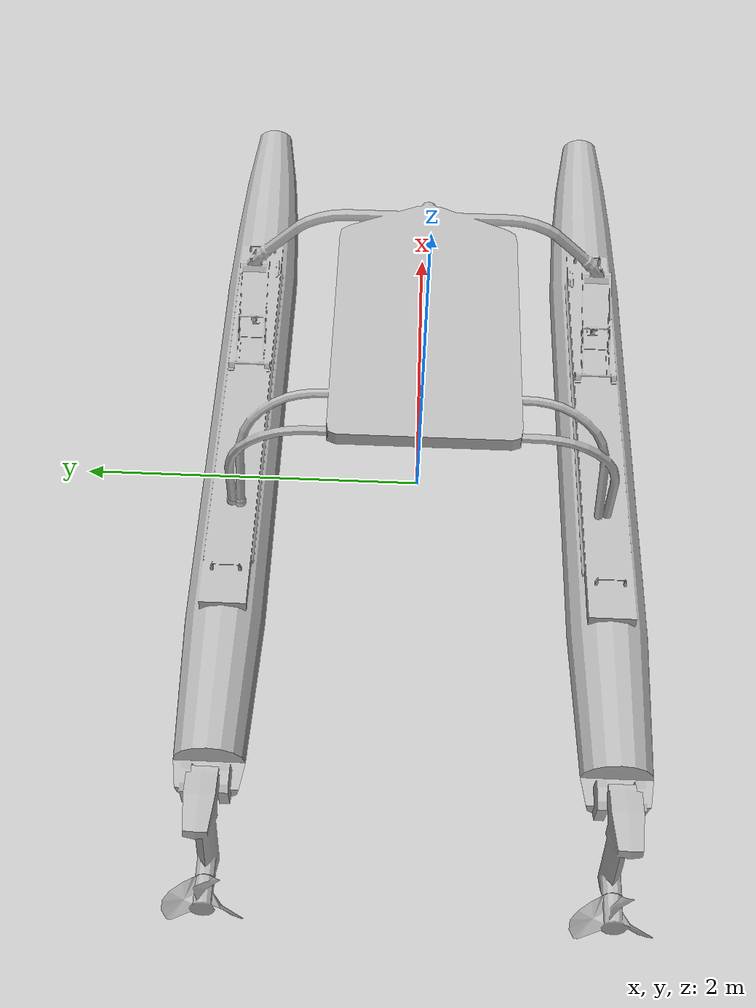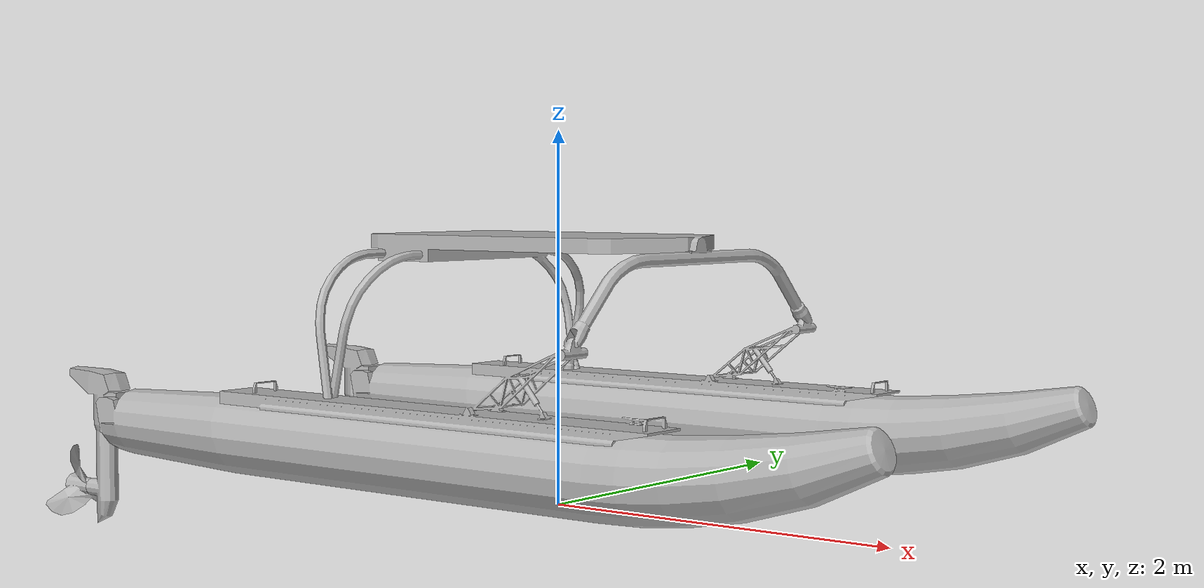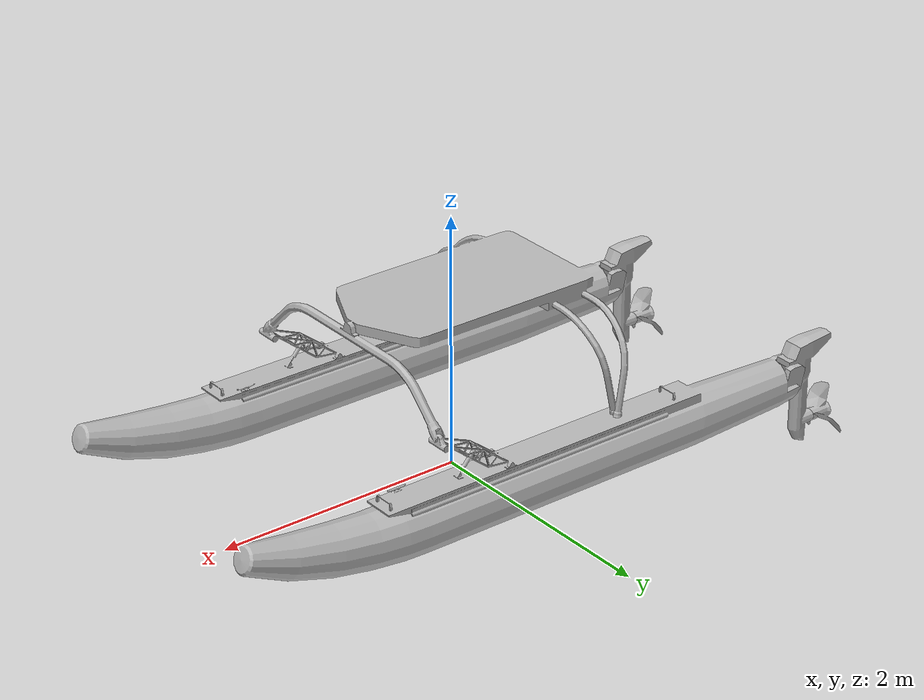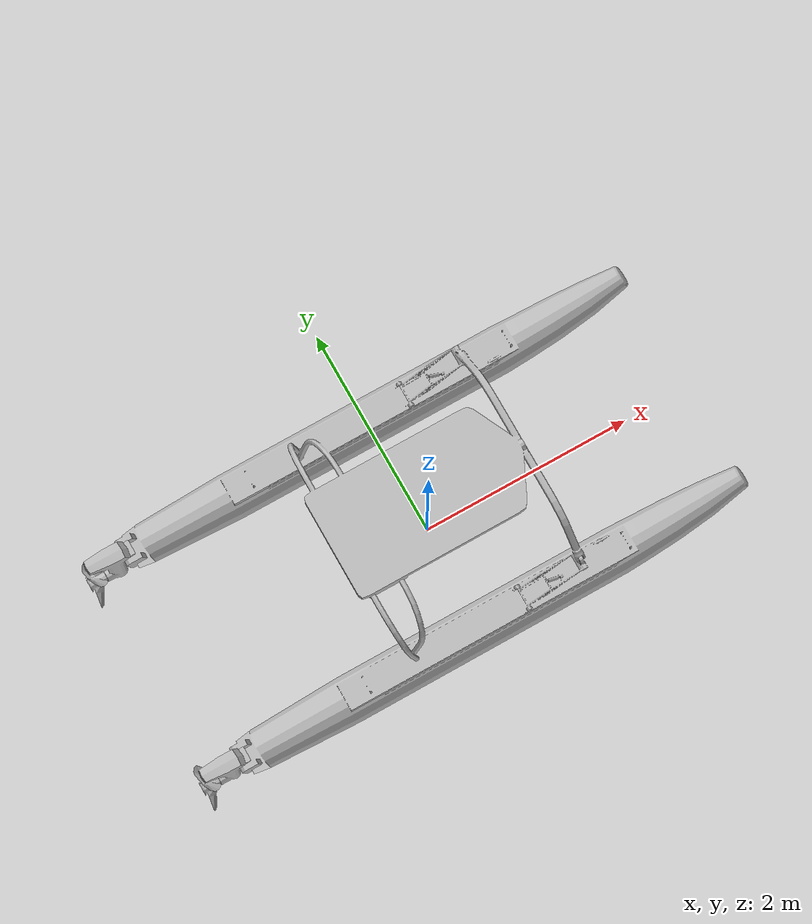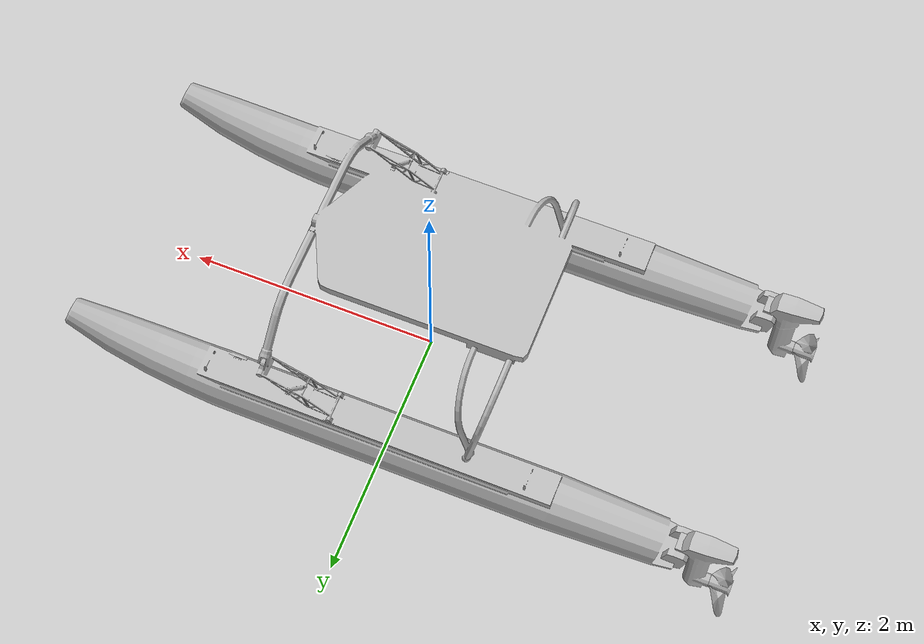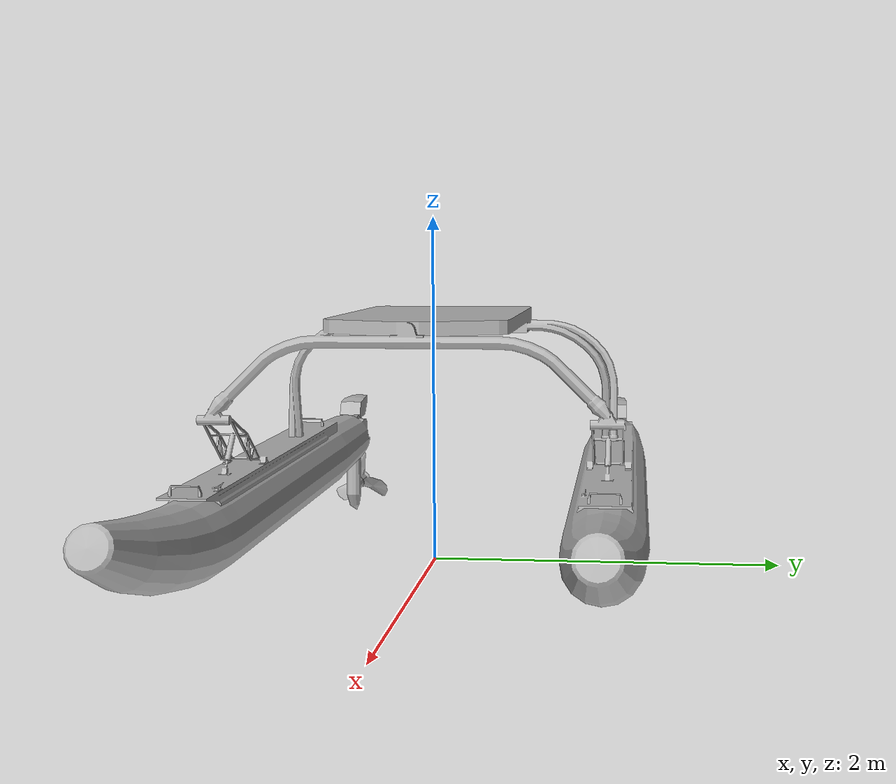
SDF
<?xml version="1.0"?>
<sdf version="1.9">
  <model name="wamv">
    <pose>0 0 0.15 0 0 0</pose>

    <!-- HULL / BODY -->
    <link name="base_link">
      <self_collide>false</self_collide>

      <!-- Hull mass that worked for floating -->
      <inertial>
        <mass>36.0</mass>
        <pose>0.298 0 -0.12 0 0 0</pose>  <!-- FORWARD, not back -->
        <inertia>
          <ixx>22.0</ixx><ixy>0.0</ixy><ixz>0.0</ixz>
          <iyy>45.0</iyy><iyz>0</iyz>
          <izz>55.0</izz>
        </inertia>
      </inertial>

      <!-- Moderate damping to help stability -->
      <velocity_decay>
        <linear>0.08</linear>
        <angular>0.20</angular>
      </velocity_decay>

      <!-- Visual -->
      <visual name="base_visual">
        <geometry>
          <mesh><uri>model://wamv/meshes/WAM-V-Base.dae</uri></mesh>
        </geometry>
      </visual>

      <!-- LEFT PONTOON - centered -->
      <collision name="pontoon_left">
        <pose>-0.85 0.80 -0.10 0 1.5708 0</pose>   <!-- x moved back; z slightly deeper -->
        <geometry>
          <cylinder>
            <radius>0.12</radius>
            <length>3.2</length>                   <!-- spans from about -2.45 to +0.75 m -->
          </cylinder>
        </geometry>
        <surface>
          <contact>
            <collide_bitmask>0x01</collide_bitmask>
          </contact>
        </surface>
      </collision>

      <!-- RIGHT PONTOON -->
      <collision name="pontoon_right">
        <pose>-0.85 -0.80 -0.10 0 1.5708 0</pose>
        <geometry>
          <cylinder>
            <radius>0.12</radius>
            <length>3.2</length>
          </cylinder>
        </geometry>
        <surface>
          <contact>
            <collide_bitmask>0x01</collide_bitmask>
          </contact>
        </surface>
      </collision>

      <!-- Deck collision - above water -->
      <collision name="deck_collision">
        <pose>0 0 0.35 0 0 0</pose>
        <geometry><box><size>2.5 1.5 0.02</size></box></geometry>
      </collision>

      <!-- SENSORS -->
      <sensor name="imu_sensor" type="imu">
        <always_on>1</always_on>
        <update_rate>250</update_rate>
        <imu>
          <angular_velocity>
            <x><noise type="gaussian"><mean>0</mean><stddev>0.00018665</stddev>
              <dynamic_bias_stddev>3.8785e-05</dynamic_bias_stddev>
              <dynamic_bias_correlation_time>1000</dynamic_bias_correlation_time></noise></x>
            <y><noise type="gaussian"><mean>0</mean><stddev>0.00018665</stddev>
              <dynamic_bias_stddev>3.8785e-05</dynamic_bias_stddev>
              <dynamic_bias_correlation_time>1000</dynamic_bias_correlation_time></noise></y>
            <z><noise type="gaussian"><mean>0</mean><stddev>0.00018665</stddev>
              <dynamic_bias_stddev>3.8785e-05</dynamic_bias_stddev>
              <dynamic_bias_correlation_time>1000</dynamic_bias_correlation_time></noise></z>
          </angular_velocity>
          <linear_acceleration>
            <x><noise type="gaussian"><mean>0</mean><stddev>0.00186</stddev>
              <dynamic_bias_stddev>0.006</dynamic_bias_stddev>
              <dynamic_bias_correlation_time>300</dynamic_bias_correlation_time></noise></x>
            <y><noise type="gaussian"><mean>0</mean><stddev>0.00186</stddev>
              <dynamic_bias_stddev>0.006</dynamic_bias_stddev>
              <dynamic_bias_correlation_time>300</dynamic_bias_correlation_time></noise></y>
            <z><noise type="gaussian"><mean>0</mean><stddev>0.00186</stddev>
              <dynamic_bias_stddev>0.006</dynamic_bias_stddev>
              <dynamic_bias_correlation_time>300</dynamic_bias_correlation_time></noise></z>
          </linear_acceleration>
        </imu>
      </sensor>

      <sensor name="magnetometer_sensor" type="magnetometer">
        <always_on>1</always_on><update_rate>100</update_rate>
        <magnetometer>
          <x><noise type="gaussian"><mean>0</mean><stddev>0.0001</stddev></noise></x>
          <y><noise type="gaussian"><mean>0</mean><stddev>0.0001</stddev></noise></y>
          <z><noise type="gaussian"><mean>0</mean><stddev>0.0001</stddev></noise></z>
        </magnetometer>
      </sensor>

      <sensor name="air_pressure_sensor" type="air_pressure">
        <always_on>1</always_on><update_rate>50</update_rate>
        <air_pressure>
          <pressure><noise type="gaussian"><mean>0</mean><stddev>0.01</stddev></noise></pressure>
        </air_pressure>
      </sensor>

      <sensor name="navsat_sensor" type="navsat">
        <always_on>1</always_on><update_rate>30</update_rate>
      </sensor>
    </link>

    <!-- LEFT ENGINE - Original VRX position (stern) -->
    <link name="left_engine_link">
      <pose relative_to="base_link">-2.373776 1.027135 0.318237 0 0 0</pose>
      <inertial>
        <mass>1.5</mass>
        <inertia>
          <ixx>0.1</ixx><ixy>0</ixy><ixz>0</ixz>
          <iyy>0.12</iyy><iyz>0</iyz>
          <izz>0.08</izz>
        </inertia>
      </inertial>
      <visual name="left_engine_visual">
        <geometry><mesh><uri>model://wamv/meshes/engine.dae</uri></mesh></geometry>
      </visual>
    </link>

    <!-- LEFT PROPELLER - Original VRX offset -->
    <link name="left_propeller_link">
      <pose relative_to="left_engine_link">-0.278156 0 -0.509371 0 0 0</pose>
      <inertial>
        <mass>0.5</mass>
        <inertia>
          <ixx>0.002</ixx><ixy>0</ixy><ixz>0</ixz>
          <iyy>0.002</iyy><iyz>0</iyz><izz>0.003</izz>
        </inertia>
      </inertial>
      <visual name="left_propeller_visual">
        <geometry><mesh><uri>model://wamv/meshes/propeller.dae</uri></mesh></geometry>
      </visual>
    </link>

    <!-- RIGHT ENGINE - Original VRX position (stern) -->
    <link name="right_engine_link">
      <pose relative_to="base_link">-2.373776 -1.027135 0.318237 0 0 0</pose>
      <inertial>
        <mass>1.5</mass>
        <inertia>
          <ixx>0.1</ixx><ixy>0</ixy><ixz>0</ixz>
          <iyy>0.12</iyy><iyz>0</iyz>
          <izz>0.08</izz>
        </inertia>
      </inertial>
      <visual name="right_engine_visual">
        <geometry><mesh><uri>model://wamv/meshes/engine.dae</uri></mesh></geometry>
      </visual>
    </link>

    <!-- RIGHT PROPELLER - Original VRX offset -->
    <link name="right_propeller_link">
      <pose relative_to="right_engine_link">-0.278156 0 -0.509371 0 0 0</pose>
      <inertial>
        <mass>0.5</mass>
        <inertia>
          <ixx>0.002</ixx><ixy>0</ixy><ixz>0</ixz>
          <iyy>0.002</iyy><iyz>0</iyz><izz>0.003</izz>
        </inertia>
      </inertial>
      <visual name="right_propeller_visual">
        <geometry><mesh><uri>model://wamv/meshes/propeller.dae</uri></mesh></geometry>
      </visual>
    </link>

    <!-- JOINTS -->
    <!-- Lock engine pods (no steering for now) -->
    <joint name="left_engine_joint" type="fixed">
      <parent>base_link</parent>
      <child>left_engine_link</child>
    </joint>

    <joint name="right_engine_joint" type="fixed">
      <parent>base_link</parent>
      <child>right_engine_link</child>
    </joint>

    <!-- Propeller joints - spin forward (+X thrust pushes boat forward) -->
    <joint name="left_propeller_joint" type="revolute">
      <parent>left_engine_link</parent>
      <child>left_propeller_link</child>
      <axis>
        <xyz>1 0 0</xyz>
        <limit><lower>-1e16</lower><upper>1e16</upper></limit>
        <dynamics><damping>0.05</damping><friction>0.0</friction></dynamics>
      </axis>
    </joint>

    <joint name="right_propeller_joint" type="revolute">
      <parent>right_engine_link</parent>
      <child>right_propeller_link</child>
      <axis>
        <xyz>1 0 0</xyz>
        <limit><lower>-1e16</lower><upper>1e16</upper></limit>
        <dynamics><damping>0.05</damping><friction>0.0</friction></dynamics>
      </axis>
    </joint>

    <!-- SENSOR PLUGINS -->
    <plugin filename="gz-sim-imu-system" name="gz::sim::systems::Imu"/>
    <plugin filename="gz-sim-magnetometer-system" name="gz::sim::systems::Magnetometer"/>
    <plugin filename="gz-sim-air-pressure-system" name="gz::sim::systems::AirPressure"/>
    <plugin filename="gz-sim-navsat-system" name="gz::sim::systems::NavSat"/>

    <!-- HYDRODYNAMICS - Calm but stable -->
    <plugin filename="gz-sim-hydrodynamics-system" name="gz::sim::systems::Hydrodynamics">
      <link_name>base_link</link_name>
      <water_density>1000</water_density>
      <!-- Linear drag -->
      <xU>-20</xU>
      <yV>-60</yV>
      <zW>-120</zW>
      <!-- Angular drag -->
      <kP>-40</kP>
      <mQ>-50</mQ>
      <nR>-60</nR>
      <!-- Added mass -->
      <xDotU>-2.0</xDotU>
      <yDotV>-4.0</yDotV>
      <nDotR>-1.0</nDotR>
    </plugin>

    <!-- THRUSTERS - Use velocity control mode -->
    <plugin filename="gz-sim-thruster-system" name="gz::sim::systems::Thruster">
      <joint_name>left_propeller_joint</joint_name>
      <namespace>wamv_0</namespace>                 <!-- no leading slash -->
      <topic>command/thrust/left</topic>            <!-- relative to namespace -->
      <use_angvel_cmd>false</use_angvel_cmd>        <!-- commands are Newtons (default) -->
      <thrust_coefficient>0.01</thrust_coefficient>
      <fluid_density>1000</fluid_density>
      <propeller_diameter>0.2</propeller_diameter>
      <velocity_control>true</velocity_control>     <!-- OK: affects how blades spin -->
      <max_thrust_cmd>500</max_thrust_cmd>          <!-- matches your teleop clamp -->
    </plugin>

    <plugin filename="gz-sim-thruster-system" name="gz::sim::systems::Thruster">
      <joint_name>right_propeller_joint</joint_name>
      <namespace>wamv_0</namespace>
      <topic>command/thrust/right</topic>
      <use_angvel_cmd>false</use_angvel_cmd>
      <thrust_coefficient>0.01</thrust_coefficient>
      <fluid_density>1000</fluid_density>
      <propeller_diameter>0.2</propeller_diameter>
      <velocity_control>true</velocity_control>
      <max_thrust_cmd>500</max_thrust_cmd>
    </plugin>

    <plugin filename="gz-sim-odometry-publisher-system"
            name="gz::sim::systems::OdometryPublisher">
      <odom_publish_frequency>50</odom_publish_frequency>
      <odom_frame>wamv_0/odom</odom_frame>
      <robot_base_frame>wamv_0/base_link</robot_base_frame>
    </plugin>
  </model>
</sdf>
